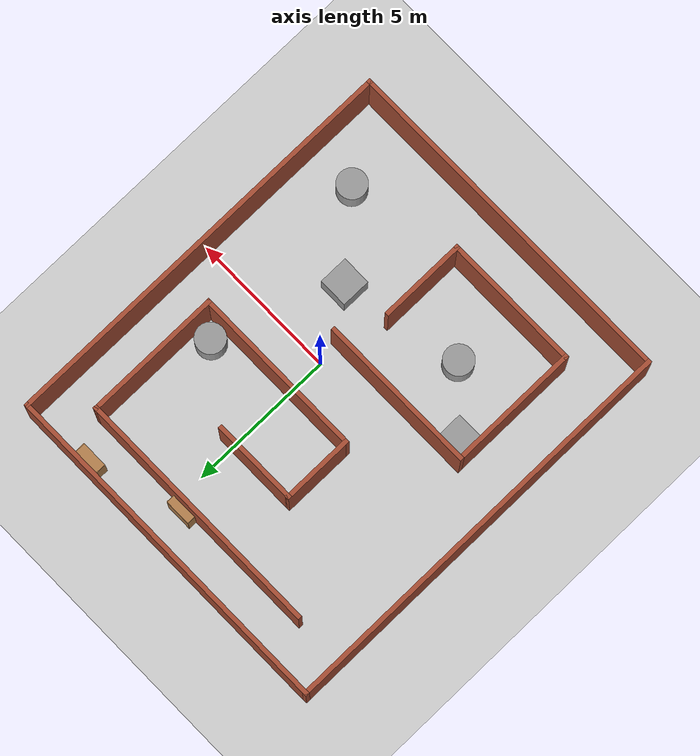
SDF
<sdf version="1.7">
 <world name="default">
  <light name="sun" type="directional">
   <pose>0 0 10 0 -0 0</pose>
   <diffuse>0.8 0.8 0.8 1</diffuse>
   <specular>0.2 0.2 0.2 1</specular>
   <attenuation>
    <range>1000</range>
    <constant>0.9</constant>
    <linear>0.01</linear>
    <quadratic>0.001</quadratic>
   </attenuation>
   <direction>-0.5 0.1 -0.9</direction>
   <spot><inner_angle>0</inner_angle><outer_angle>0</outer_angle><falloff>0</falloff></spot>
  </light>
  <model name="ground_plane">
   <static>1</static>
   <link name="link">
    <collision name="collision">
     <geometry><plane><normal>0 0 1</normal><size>100 100</size></plane></geometry>
     <surface>
      <contact><collide_bitmask>65535</collide_bitmask></contact>
      <friction><ode><mu>100</mu><mu2>50</mu2></ode></friction>
     </surface>
    </collision>
    <visual name="visual">
     <cast_shadows>0</cast_shadows>
     <geometry><plane><normal>0 0 1</normal><size>100 100</size></plane></geometry>
     <material>
      <script><uri>file://media/materials/scripts/gazebo.material</uri><name>Gazebo/Grey</name></script>
     </material>
    </visual>
   </link>
  </model>
  <gravity>0 0 -9.8</gravity>
  <magnetic_field>6e-06 2.3e-05 -4.2e-05</magnetic_field>
  <atmosphere type="adiabatic"/>
  <physics type="ode">
   <max_step_size>0.001</max_step_size>
   <real_time_factor>1</real_time_factor>
   <real_time_update_rate>1000</real_time_update_rate>
  </physics>
  <scene><ambient>0.4 0.4 0.4 1</ambient><background>0.7 0.7 0.7 1</background><shadows>1</shadows></scene>
  <audio><device>default</device></audio>
  <spherical_coordinates>
   <surface_model>EARTH_WGS84</surface_model>
   <latitude_deg>0</latitude_deg>
   <longitude_deg>0</longitude_deg>
   <elevation>0</elevation>
   <heading_deg>0</heading_deg>
  </spherical_coordinates>
  <model name="maze_model">
   <pose>-1.085 0.316701 0 0 -0 0</pose>
   <link name="Wall_10">
    <collision name="Wall_10_Collision">
     <geometry><box><size>12 0.15 2.5</size></box></geometry>
     <pose>0 0 1.25 0 -0 0</pose>
    </collision>
    <visual name="Wall_10_Visual">
     <pose>0 0 1.25 0 -0 0</pose>
     <geometry><box><size>12 0.15 2.5</size></box></geometry>
     <material>
      <script><uri>file://media/materials/scripts/gazebo.material</uri><name>Gazebo/Bricks</name></script>
      <ambient>1 1 1 1</ambient>
     </material>
     <meta><layer>0</layer></meta>
    </visual>
    <pose>0 -7.05 0 0 -0 0</pose>
   </link>
   <link name="Wall_11">
    <collision name="Wall_11_Collision">
     <geometry><box><size>14.25 0.15 2.5</size></box></geometry>
     <pose>0 0 1.25 0 -0 0</pose>
    </collision>
    <visual name="Wall_11_Visual">
     <pose>0 0 1.25 0 -0 0</pose>
     <geometry><box><size>14.25 0.15 2.5</size></box></geometry>
     <material>
      <script><uri>file://media/materials/scripts/gazebo.material</uri><name>Gazebo/Bricks</name></script>
      <ambient>1 1 1 1</ambient>
     </material>
     <meta><layer>0</layer></meta>
    </visual>
    <pose>5.925 0 0 0 -0 1.5708</pose>
   </link>
   <link name="Wall_13">
    <collision name="Wall_13_Collision">
     <geometry><box><size>8.75 0.15 2.5</size></box></geometry>
     <pose>0 0 1.25 0 -0 0</pose>
    </collision>
    <visual name="Wall_13_Visual">
     <pose>0 0 1.25 0 -0 0</pose>
     <geometry><box><size>8.75 0.15 2.5</size></box></geometry>
     <material>
      <script><uri>file://media/materials/scripts/gazebo.material</uri><name>Gazebo/Bricks</name></script>
      <ambient>1 1 1 1</ambient>
     </material>
     <meta><layer>0</layer></meta>
    </visual>
    <pose>0.140027 5.64831 0 0 -0 0</pose>
   </link>
   <link name="Wall_14">
    <collision name="Wall_14_Collision">
     <geometry><box><size>4.75 0.15 2.5</size></box></geometry>
     <pose>0 0 1.25 0 -0 0</pose>
    </collision>
    <visual name="Wall_14_Visual">
     <pose>0 0 1.25 0 -0 0</pose>
     <geometry><box><size>4.75 0.15 2.5</size></box></geometry>
     <material>
      <script><uri>file://media/materials/scripts/gazebo.material</uri><name>Gazebo/Bricks</name></script>
      <ambient>1 1 1 1</ambient>
     </material>
     <meta><layer>0</layer></meta>
    </visual>
    <pose>4.44003 3.34831 0 0 -0 -1.5708</pose>
   </link>
   <link name="Wall_15">
    <collision name="Wall_15_Collision">
     <geometry><box><size>6 0.15 2.5</size></box></geometry>
     <pose>0 0 1.25 0 -0 0</pose>
    </collision>
    <visual name="Wall_15_Visual">
     <pose>0 0 1.25 0 -0 0</pose>
     <geometry><box><size>6 0.15 2.5</size></box></geometry>
     <material>
      <script><uri>file://media/materials/scripts/gazebo.material</uri><name>Gazebo/Bricks</name></script>
      <ambient>1 1 1 1</ambient>
     </material>
     <meta><layer>0</layer></meta>
    </visual>
    <pose>1.51503 1.04831 0 0 -0 3.14159</pose>
   </link>
   <link name="Wall_16">
    <collision name="Wall_16_Collision">
     <geometry><box><size>2.5 0.15 2.5</size></box></geometry>
     <pose>0 0 1.25 0 -0 0</pose>
    </collision>
    <visual name="Wall_16_Visual">
     <pose>0 0 1.25 0 -0 0</pose>
     <geometry><box><size>2.5 0.15 2.5</size></box></geometry>
     <material>
      <script><uri>file://media/materials/scripts/gazebo.material</uri><name>Gazebo/Bricks</name></script>
      <ambient>1 1 1 1</ambient>
     </material>
     <meta><layer>0</layer></meta>
    </visual>
    <pose>-1.40997 2.22331 0 0 -0 1.5708</pose>
   </link>
   <link name="Wall_17">
    <collision name="Wall_17_Collision">
     <geometry><box><size>3 0.15 2.5</size></box></geometry>
     <pose>0 0 1.25 0 -0 0</pose>
    </collision>
    <visual name="Wall_17_Visual">
     <pose>0 0 1.25 0 -0 0</pose>
     <geometry><box><size>3 0.15 2.5</size></box></geometry>
     <material>
      <script><uri>file://media/materials/scripts/gazebo.material</uri><name>Gazebo/Bricks</name></script>
      <ambient>1 1 1 1</ambient>
     </material>
     <meta><layer>0</layer></meta>
    </visual>
    <pose>0.015027 3.39831 0 0 -0 0</pose>
   </link>
   <link name="Wall_19">
    <collision name="Wall_19_Collision">
     <geometry><box><size>5.5 0.15 2.5</size></box></geometry>
     <pose>0 0 1.25 0 -0 0</pose>
    </collision>
    <visual name="Wall_19_Visual">
     <pose>0 0 1.25 0 -0 0</pose>
     <geometry><box><size>5.5 0.15 2.5</size></box></geometry>
     <material>
      <script><uri>file://media/materials/scripts/gazebo.material</uri><name>Gazebo/Bricks</name></script>
      <ambient>1 1 1 1</ambient>
     </material>
     <meta><layer>0</layer></meta>
    </visual>
    <pose>-1.43587 -1.04354 0 0 -0 3.14159</pose>
   </link>
   <link name="Wall_20">
    <collision name="Wall_20_Collision">
     <geometry><box><size>4.5 0.15 2.5</size></box></geometry>
     <pose>0 0 1.25 0 -0 0</pose>
    </collision>
    <visual name="Wall_20_Visual">
     <pose>0 0 1.25 0 -0 0</pose>
     <geometry><box><size>4.5 0.15 2.5</size></box></geometry>
     <material>
      <script><uri>file://media/materials/scripts/gazebo.material</uri><name>Gazebo/Bricks</name></script>
      <ambient>1 1 1 1</ambient>
     </material>
     <meta><layer>0</layer></meta>
    </visual>
    <pose>-4.11087 -3.21854 0 0 -0 -1.5708</pose>
   </link>
   <link name="Wall_21">
    <collision name="Wall_21_Collision">
     <geometry><box><size>4.75 0.15 2.5</size></box></geometry>
     <pose>0 0 1.25 0 -0 0</pose>
    </collision>
    <visual name="Wall_21_Visual">
     <pose>0 0 1.25 0 -0 0</pose>
     <geometry><box><size>4.75 0.15 2.5</size></box></geometry>
     <material>
      <script><uri>file://media/materials/scripts/gazebo.material</uri><name>Gazebo/Bricks</name></script>
      <ambient>1 1 1 1</ambient>
     </material>
     <meta><layer>0</layer></meta>
    </visual>
    <pose>-1.81087 -5.39354 0 0 -0 0</pose>
   </link>
   <link name="Wall_22">
    <collision name="Wall_22_Collision">
     <geometry><box><size>3 0.15 2.5</size></box></geometry>
     <pose>0 0 1.25 0 -0 0</pose>
    </collision>
    <visual name="Wall_22_Visual">
     <pose>0 0 1.25 0 -0 0</pose>
     <geometry><box><size>3 0.15 2.5</size></box></geometry>
     <material>
      <script><uri>file://media/materials/scripts/gazebo.material</uri><name>Gazebo/Bricks</name></script>
      <ambient>1 1 1 1</ambient>
     </material>
     <meta><layer>0</layer></meta>
    </visual>
    <pose>0.489133 -3.96854 0 0 -0 1.5708</pose>
   </link>
   <link name="Wall_6">
    <collision name="Wall_6_Collision">
     <geometry><box><size>12 0.15 2.5</size></box></geometry>
     <pose>0 0 1.25 0 -0 0</pose>
    </collision>
    <visual name="Wall_6_Visual">
     <pose>0 0 1.25 0 -0 0</pose>
     <geometry><box><size>12 0.15 2.5</size></box></geometry>
     <material>
      <script><uri>file://media/materials/scripts/gazebo.material</uri><name>Gazebo/Bricks</name></script>
      <ambient>1 1 1 1</ambient>
     </material>
     <meta><layer>0</layer></meta>
    </visual>
    <pose>0 7.05 0 0 -0 0</pose>
   </link>
   <link name="Wall_9">
    <collision name="Wall_9_Collision">
     <geometry><box><size>14.25 0.15 2.5</size></box></geometry>
     <pose>0 0 1.25 0 -0 0</pose>
    </collision>
    <visual name="Wall_9_Visual">
     <pose>0 0 1.25 0 -0 0</pose>
     <geometry><box><size>14.25 0.15 2.5</size></box></geometry>
     <material>
      <script><uri>file://media/materials/scripts/gazebo.material</uri><name>Gazebo/Bricks</name></script>
      <ambient>1 1 1 1</ambient>
     </material>
     <meta><layer>0</layer></meta>
    </visual>
    <pose>-5.925 0 0 0 -0 -1.5708</pose>
   </link>
   <static>1</static>
  </model>
  <model name="unit_cylinder">
   <pose>3.195 -4.41 0.499998 3e-06 -4e-06 0</pose>
   <link name="link">
    <inertial>
     <mass>1</mass>
     <inertia><ixx>0.145833</ixx><ixy>0</ixy><ixz>0</ixz><iyy>0.145833</iyy><iyz>0</iyz><izz>0.125</izz></inertia>
    </inertial>
    <collision name="collision">
     <geometry><cylinder><radius>0.5</radius><length>1</length></cylinder></geometry>
    </collision>
    <visual name="visual">
     <geometry><cylinder><radius>0.5</radius><length>1</length></cylinder></geometry>
     <material>
      <script><name>Gazebo/Grey</name><uri>file://media/materials/scripts/gazebo.material</uri></script>
     </material>
    </visual>
   </link>
  </model>
  <model name="unit_box">
   <pose>1.185 -2.15 0.5 -0 -0 -0</pose>
   <link name="link">
    <inertial>
     <mass>1</mass>
     <inertia>
      <ixx>0.166667</ixx>
      <ixy>0</ixy>
      <ixz>0</ixz>
      <iyy>0.166667</iyy>
      <iyz>0</iyz>
      <izz>0.166667</izz>
     </inertia>
    </inertial>
    <collision name="collision"><geometry><box><size>1 1 1</size></box></geometry></collision>
    <visual name="visual">
     <geometry><box><size>1 1 1</size></box></geometry>
     <material>
      <script><name>Gazebo/Grey</name><uri>file://media/materials/scripts/gazebo.material</uri></script>
     </material>
    </visual>
   </link>
  </model>
  <model name="unit_cylinder_0">
   <pose>-2.91235 -2.94589 0.499998 3e-06 -4e-06 0</pose>
   <link name="link">
    <inertial>
     <mass>1</mass>
     <inertia><ixx>0.145833</ixx><ixy>0</ixy><ixz>0</ixz><iyy>0.145833</iyy><iyz>0</iyz><izz>0.125</izz></inertia>
    </inertial>
    <collision name="collision">
     <geometry><cylinder><radius>0.5</radius><length>1</length></cylinder></geometry>
    </collision>
    <visual name="visual">
     <geometry><cylinder><radius>0.5</radius><length>1</length></cylinder></geometry>
     <material>
      <script><name>Gazebo/Grey</name><uri>file://media/materials/scripts/gazebo.material</uri></script>
     </material>
    </visual>
   </link>
  </model>
  <model name="unit_box_0">
   <pose>-4.62061 -1.30236 0.5 0 -0 0.000466</pose>
   <link name="link">
    <inertial>
     <mass>1</mass>
     <inertia>
      <ixx>0.166667</ixx>
      <ixy>0</ixy>
      <ixz>0</ixz>
      <iyy>0.166667</iyy>
      <iyz>0</iyz>
      <izz>0.166667</izz>
     </inertia>
    </inertial>
    <collision name="collision"><geometry><box><size>1 1 1</size></box></geometry></collision>
    <visual name="visual">
     <geometry><box><size>1 1 1</size></box></geometry>
     <material>
      <script><name>Gazebo/Grey</name><uri>file://media/materials/scripts/gazebo.material</uri></script>
     </material>
    </visual>
   </link>
  </model>
  <model name="unit_cylinder_1">
   <pose>2.74677 1.94655 0.499993 -3e-06 -3e-06 0</pose>
   <link name="link">
    <inertial>
     <mass>1</mass>
     <inertia><ixx>0.145833</ixx><ixy>0</ixy><ixz>0</ixz><iyy>0.145833</iyy><iyz>0</iyz><izz>0.125</izz></inertia>
    </inertial>
    <collision name="collision">
     <geometry><cylinder><radius>0.5</radius><length>1</length></cylinder></geometry>
    </collision>
    <visual name="visual">
     <geometry><cylinder><radius>0.5</radius><length>1</length></cylinder></geometry>
     <material>
      <script><name>Gazebo/Grey</name><uri>file://media/materials/scripts/gazebo.material</uri></script>
     </material>
    </visual>
   </link>
  </model>
  <model name="bookshelf">
   <static>1</static>
   <link name="link">
    <inertial><mass>1</mass></inertial>
    <collision name="back">
     <pose>0 0.005 0.6 0 -0 0</pose>
     <geometry><box><size>0.9 0.01 1.2</size></box></geometry>
    </collision>
    <visual name="visual1">
     <pose>0 0.005 0.6 0 -0 0</pose>
     <geometry><box><size>0.9 0.01 1.2</size></box></geometry>
     <material>
      <script><uri>file://media/materials/scripts/gazebo.material</uri><name>Gazebo/Wood</name></script>
     </material>
    </visual>
    <collision name="left_side">
     <pose>0.45 -0.195 0.6 0 -0 0</pose>
     <geometry><box><size>0.02 0.4 1.2</size></box></geometry>
    </collision>
    <visual name="visual2">
     <pose>0.45 -0.195 0.6 0 -0 0</pose>
     <geometry><box><size>0.02 0.4 1.2</size></box></geometry>
     <material>
      <script><uri>file://media/materials/scripts/gazebo.material</uri><name>Gazebo/Wood</name></script>
     </material>
    </visual>
    <collision name="right_side">
     <pose>-0.45 -0.195 0.6 0 -0 0</pose>
     <geometry><box><size>0.02 0.4 1.2</size></box></geometry>
    </collision>
    <visual name="visual3">
     <pose>-0.45 -0.195 0.6 0 -0 0</pose>
     <geometry><box><size>0.02 0.4 1.2</size></box></geometry>
     <material>
      <script><uri>file://media/materials/scripts/gazebo.material</uri><name>Gazebo/Wood</name></script>
     </material>
    </visual>
    <collision name="bottom">
     <pose>0 -0.195 0.03 0 -0 0</pose>
     <geometry><box><size>0.88 0.4 0.06</size></box></geometry>
    </collision>
    <visual name="visual4">
     <pose>0 -0.195 0.03 0 -0 0</pose>
     <geometry><box><size>0.88 0.4 0.06</size></box></geometry>
     <material>
      <script><uri>file://media/materials/scripts/gazebo.material</uri><name>Gazebo/Wood</name></script>
     </material>
    </visual>
    <collision name="top">
     <pose>0 -0.195 1.19 0 -0 0</pose>
     <geometry><box><size>0.88 0.4 0.02</size></box></geometry>
    </collision>
    <visual name="visual5">
     <pose>0 -0.195 1.19 0 -0 0</pose>
     <geometry><box><size>0.88 0.4 0.02</size></box></geometry>
     <material>
      <script><uri>file://media/materials/scripts/gazebo.material</uri><name>Gazebo/Wood</name></script>
     </material>
    </visual>
    <collision name="low_shelf">
     <pose>0 -0.195 0.43 0 -0 0</pose>
     <geometry><box><size>0.88 0.4 0.02</size></box></geometry>
    </collision>
    <visual name="visual6">
     <pose>0 -0.195 0.43 0 -0 0</pose>
     <geometry><box><size>0.88 0.4 0.02</size></box></geometry>
     <material>
      <script><uri>file://media/materials/scripts/gazebo.material</uri><name>Gazebo/Wood</name></script>
     </material>
    </visual>
    <collision name="high_shelf">
     <pose>0 -0.195 0.8 0 -0 0</pose>
     <geometry><box><size>0.88 0.4 0.02</size></box></geometry>
    </collision>
    <visual name="visual7">
     <pose>0 -0.195 0.8 0 -0 0</pose>
     <geometry><box><size>0.88 0.4 0.02</size></box></geometry>
     <material>
      <script><uri>file://media/materials/scripts/gazebo.material</uri><name>Gazebo/Wood</name></script>
     </material>
    </visual>
   </link>
   <pose>-0.411036 6.31476 0 0 -0 0</pose>
  </model>
  <model name="bookshelf_0">
   <static>1</static>
   <link name="link">
    <inertial><mass>1</mass></inertial>
    <collision name="back">
     <pose>0 0.005 0.6 0 -0 0</pose>
     <geometry><box><size>0.9 0.01 1.2</size></box></geometry>
    </collision>
    <visual name="visual1">
     <pose>0 0.005 0.6 0 -0 0</pose>
     <geometry><box><size>0.9 0.01 1.2</size></box></geometry>
     <material>
      <script><uri>file://media/materials/scripts/gazebo.material</uri><name>Gazebo/Wood</name></script>
     </material>
    </visual>
    <collision name="left_side">
     <pose>0.45 -0.195 0.6 0 -0 0</pose>
     <geometry><box><size>0.02 0.4 1.2</size></box></geometry>
    </collision>
    <visual name="visual2">
     <pose>0.45 -0.195 0.6 0 -0 0</pose>
     <geometry><box><size>0.02 0.4 1.2</size></box></geometry>
     <material>
      <script><uri>file://media/materials/scripts/gazebo.material</uri><name>Gazebo/Wood</name></script>
     </material>
    </visual>
    <collision name="right_side">
     <pose>-0.45 -0.195 0.6 0 -0 0</pose>
     <geometry><box><size>0.02 0.4 1.2</size></box></geometry>
    </collision>
    <visual name="visual3">
     <pose>-0.45 -0.195 0.6 0 -0 0</pose>
     <geometry><box><size>0.02 0.4 1.2</size></box></geometry>
     <material>
      <script><uri>file://media/materials/scripts/gazebo.material</uri><name>Gazebo/Wood</name></script>
     </material>
    </visual>
    <collision name="bottom">
     <pose>0 -0.195 0.03 0 -0 0</pose>
     <geometry><box><size>0.88 0.4 0.06</size></box></geometry>
    </collision>
    <visual name="visual4">
     <pose>0 -0.195 0.03 0 -0 0</pose>
     <geometry><box><size>0.88 0.4 0.06</size></box></geometry>
     <material>
      <script><uri>file://media/materials/scripts/gazebo.material</uri><name>Gazebo/Wood</name></script>
     </material>
    </visual>
    <collision name="top">
     <pose>0 -0.195 1.19 0 -0 0</pose>
     <geometry><box><size>0.88 0.4 0.02</size></box></geometry>
    </collision>
    <visual name="visual5">
     <pose>0 -0.195 1.19 0 -0 0</pose>
     <geometry><box><size>0.88 0.4 0.02</size></box></geometry>
     <material>
      <script><uri>file://media/materials/scripts/gazebo.material</uri><name>Gazebo/Wood</name></script>
     </material>
    </visual>
    <collision name="low_shelf">
     <pose>0 -0.195 0.43 0 -0 0</pose>
     <geometry><box><size>0.88 0.4 0.02</size></box></geometry>
    </collision>
    <visual name="visual6">
     <pose>0 -0.195 0.43 0 -0 0</pose>
     <geometry><box><size>0.88 0.4 0.02</size></box></geometry>
     <material>
      <script><uri>file://media/materials/scripts/gazebo.material</uri><name>Gazebo/Wood</name></script>
     </material>
    </visual>
    <collision name="high_shelf">
     <pose>0 -0.195 0.8 0 -0 0</pose>
     <geometry><box><size>0.88 0.4 0.02</size></box></geometry>
    </collision>
    <visual name="visual7">
     <pose>0 -0.195 0.8 0 -0 0</pose>
     <geometry><box><size>0.88 0.4 0.02</size></box></geometry>
     <material>
      <script><uri>file://media/materials/scripts/gazebo.material</uri><name>Gazebo/Wood</name></script>
     </material>
    </visual>
   </link>
   <pose>2.58063 7.26893 0 0 -0 0</pose>
  </model>
 </world>
</sdf>
